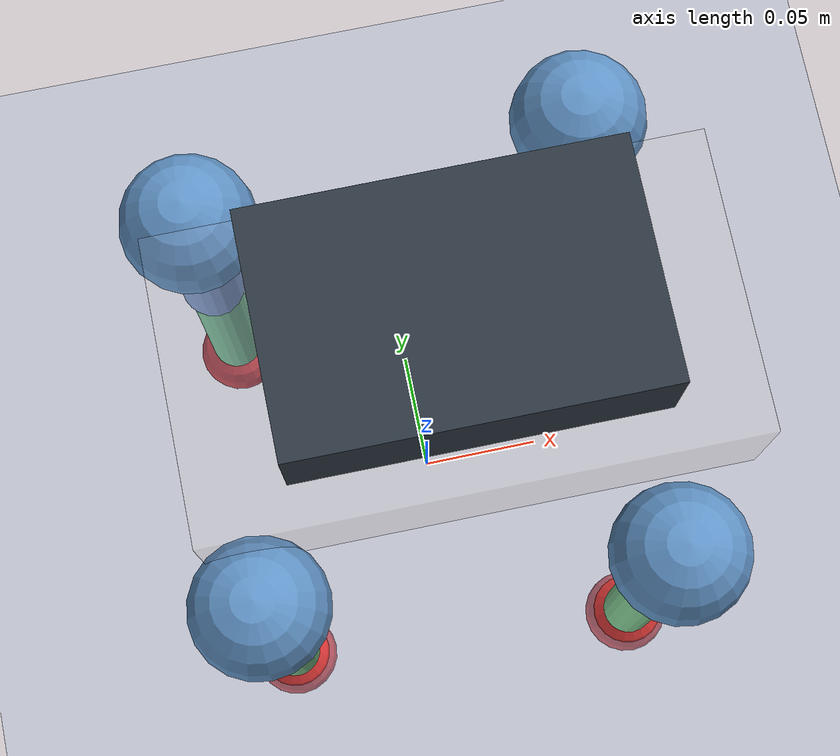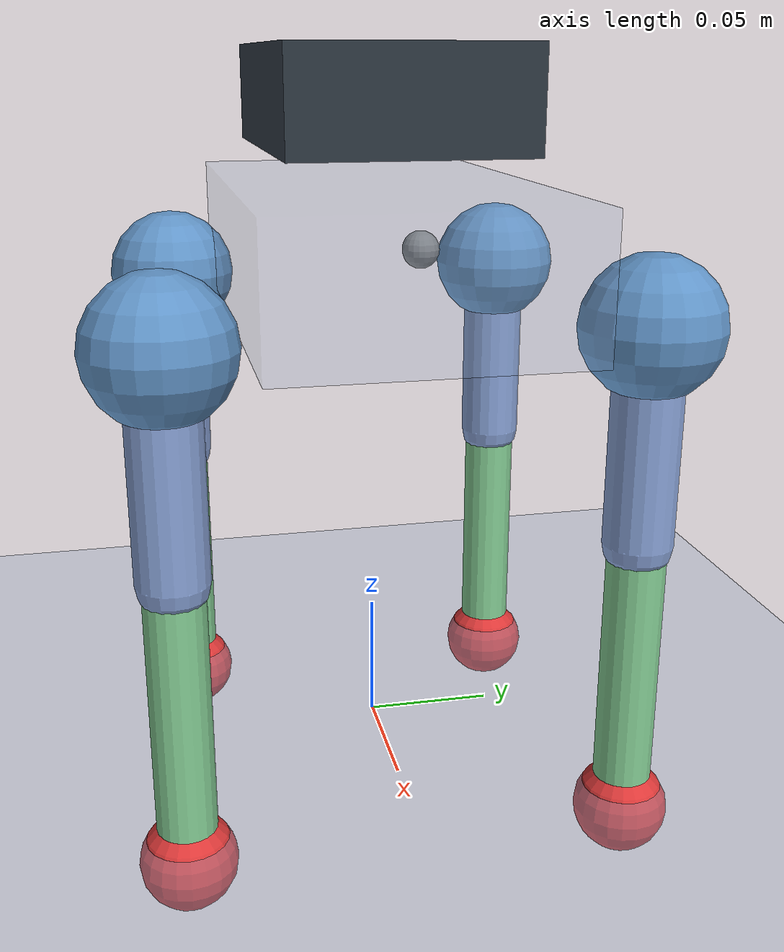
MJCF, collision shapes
<mujoco model="heavy">
  <compiler angle="radian" meshdir="../../shared/models/meshes/" autolimits="true"/>
  <default>
    <joint armature="0.003" damping="0.04" frictionloss="0.002" limited="true"/>
    <geom rgba="0.62 0.72 0.86 1" contype="0" conaffinity="0"/>
    <default class="variant_torso"><geom type="box" size="0.1 0.055 0.025" mass="3.012" rgba="0.55 0.66 0.82 0.20"/></default>
    <default class="variant_ballast"><geom type="box" size="0.065 0.042 0.018" mass="0" rgba="0.18 0.22 0.26 1" contype="0" conaffinity="0"/></default>
    <default class="variant_hip"><geom type="sphere" size="0.026" mass="0.045" rgba="0.38 0.58 0.78 1"/></default>
    <default class="variant_thigh"><geom type="capsule" fromto="0 0 0 0 0 -0.08" size="0.013" mass="0.186" rgba="0.52 0.62 0.82 1"/></default>
    <default class="variant_calf"><geom type="capsule" fromto="0 0 0 0 0 -0.11" size="0.011" mass="0.05" rgba="0.50 0.78 0.56 1"/></default>
    <default class="variant_foot"><geom type="sphere" pos="0 0 -0.11" size="0.018" mass="0.02" rgba="0.86 0.22 0.22 1" contype="1" conaffinity="1" condim="3" friction="1.2 0.04 0.01"/><site pos="0 0 -0.11" size="0.015" rgba="1 0.2 0.2 1"/></default>
  </default>
  <include file="../../shared/models/skeleton.xml"/>
</mujoco>

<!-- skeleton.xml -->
<mujoco model="shared_pupper_skeleton">
  <!-- Lab 4+: 完整 12-DoF Pupper skeleton。变体文件在 include 前注入 variant_* default。 -->
  <asset>
    <texture name="grid" type="2d" builtin="checker" width="512" height="512" rgb1=".2 .4 .6" rgb2=".4 .6 .8"/>
    <material name="grid" texture="grid" texrepeat="1 1" texuniform="true" reflectance="0"/>
    <mesh name="body" file="BodyV4v70_001.stl"/>
    <mesh name="hip_mesh" file="LegAssemblyForFlangedv26_010.stl" scale="1 -1 1"/>
    <mesh name="upper_leg_mesh" file="LegAssemblyForFlangedv26_011.stl" scale="1 1 -1"/>
    <mesh name="lower_leg_mesh" file="LegAssemblyForFlangedv26_012.stl" scale="1 1 -1"/>
  </asset>

  <option gravity="0 0 -9.81" timestep="0.004" cone="elliptic" impratio="50"/>

  <worldbody>
    <geom name="floor" type="plane" size="2 2 .05" material="grid" condim="3" contype="1" conaffinity="1"/>
    <light name="key" pos="0 0 3" dir="0 0 -1" diffuse="1 1 1"/>
    <camera name="iso" pos="0.70 -0.95 0.58" xyaxes="0.805 0.593 0 -0.233 0.316 0.920"/>

    <body name="base" pos="0 0 0.18">
      <freejoint name="root"/>
      <geom name="torso_mass" class="variant_torso" pos="0.01 0 0.02"/>
      <geom name="torso_ballast" class="variant_ballast" pos="0.01 0 0.075"/>
      <geom name="torso_mesh" type="mesh" mesh="body" quat="0.499998 -0.5 -0.500002 0.5" group="1" contype="0" conaffinity="0" density="0"/>
      <site name="body_imu_site" pos="0.08 0 0.03" size="0.006"/>

      <body name="FL_hip" pos="0.075 0.0835 0">
        <joint name="FL_HAA" type="hinge" axis="1 0 0" range="-0.8 0.8"/>
        <geom name="FL_hip_mass" class="variant_hip"/>
        <geom name="FL_hip_mesh" type="mesh" mesh="hip_mesh" group="1" contype="0" conaffinity="0" density="0"/>
        <body name="FL_thigh">
          <joint name="FL_HFE" type="hinge" axis="0 1 0" range="-1.8 1.2"/>
          <geom name="FL_thigh_capsule" class="variant_thigh"/>
          <geom name="FL_thigh_mesh" type="mesh" mesh="upper_leg_mesh" group="1" contype="0" conaffinity="0" density="0"/>
          <body name="FL_calf" pos="0 0 -0.08">
            <joint name="FL_KFE" type="hinge" axis="0 1 0" range="-2.6 0.1"/>
            <geom name="FL_calf_capsule" class="variant_calf"/>
            <geom name="FL_calf_mesh" type="mesh" mesh="lower_leg_mesh" group="1" contype="0" conaffinity="0" density="0"/>
            <geom name="FL_foot_geom" class="variant_foot"/>
            <site name="FL_foot" class="variant_foot"/>
          </body>
        </body>
      </body>

      <body name="FR_hip" pos="0.075 -0.0835 0">
        <joint name="FR_HAA" type="hinge" axis="1 0 0" range="-0.8 0.8"/>
        <geom name="FR_hip_mass" class="variant_hip"/>
        <geom name="FR_hip_mesh" type="mesh" mesh="hip_mesh" group="1" contype="0" conaffinity="0" density="0"/>
        <body name="FR_thigh">
          <joint name="FR_HFE" type="hinge" axis="0 1 0" range="-1.8 1.2"/>
          <geom name="FR_thigh_capsule" class="variant_thigh"/>
          <geom name="FR_thigh_mesh" type="mesh" mesh="upper_leg_mesh" group="1" contype="0" conaffinity="0" density="0"/>
          <body name="FR_calf" pos="0 0 -0.08">
            <joint name="FR_KFE" type="hinge" axis="0 1 0" range="-2.6 0.1"/>
            <geom name="FR_calf_capsule" class="variant_calf"/>
            <geom name="FR_calf_mesh" type="mesh" mesh="lower_leg_mesh" group="1" contype="0" conaffinity="0" density="0"/>
            <geom name="FR_foot_geom" class="variant_foot"/>
            <site name="FR_foot" class="variant_foot"/>
          </body>
        </body>
      </body>

      <body name="RL_hip" pos="-0.075 0.0725 0">
        <joint name="RL_HAA" type="hinge" axis="1 0 0" range="-0.8 0.8"/>
        <geom name="RL_hip_mass" class="variant_hip"/>
        <geom name="RL_hip_mesh" type="mesh" mesh="hip_mesh" group="1" contype="0" conaffinity="0" density="0"/>
        <body name="RL_thigh">
          <joint name="RL_HFE" type="hinge" axis="0 1 0" range="-1.8 1.2"/>
          <geom name="RL_thigh_capsule" class="variant_thigh"/>
          <geom name="RL_thigh_mesh" type="mesh" mesh="upper_leg_mesh" group="1" contype="0" conaffinity="0" density="0"/>
          <body name="RL_calf" pos="0 0 -0.08">
            <joint name="RL_KFE" type="hinge" axis="0 1 0" range="-2.6 0.1"/>
            <geom name="RL_calf_capsule" class="variant_calf"/>
            <geom name="RL_calf_mesh" type="mesh" mesh="lower_leg_mesh" group="1" contype="0" conaffinity="0" density="0"/>
            <geom name="RL_foot_geom" class="variant_foot"/>
            <site name="RL_foot" class="variant_foot"/>
          </body>
        </body>
      </body>

      <body name="RR_hip" pos="-0.075 -0.0725 0">
        <joint name="RR_HAA" type="hinge" axis="1 0 0" range="-0.8 0.8"/>
        <geom name="RR_hip_mass" class="variant_hip"/>
        <geom name="RR_hip_mesh" type="mesh" mesh="hip_mesh" group="1" contype="0" conaffinity="0" density="0"/>
        <body name="RR_thigh">
          <joint name="RR_HFE" type="hinge" axis="0 1 0" range="-1.8 1.2"/>
          <geom name="RR_thigh_capsule" class="variant_thigh"/>
          <geom name="RR_thigh_mesh" type="mesh" mesh="upper_leg_mesh" group="1" contype="0" conaffinity="0" density="0"/>
          <body name="RR_calf" pos="0 0 -0.08">
            <joint name="RR_KFE" type="hinge" axis="0 1 0" range="-2.6 0.1"/>
            <geom name="RR_calf_capsule" class="variant_calf"/>
            <geom name="RR_calf_mesh" type="mesh" mesh="lower_leg_mesh" group="1" contype="0" conaffinity="0" density="0"/>
            <geom name="RR_foot_geom" class="variant_foot"/>
            <site name="RR_foot" class="variant_foot"/>
          </body>
        </body>
      </body>
    </body>
  </worldbody>

  <actuator>
    <general name="FL_HAA_motor" joint="FL_HAA" forcerange="-18 18" forcelimited="true" gainprm="1 0 0" biasprm="0 0 0"/>
    <general name="FL_HFE_motor" joint="FL_HFE" forcerange="-18 18" forcelimited="true" gainprm="1 0 0" biasprm="0 0 0"/>
    <general name="FL_KFE_motor" joint="FL_KFE" forcerange="-18 18" forcelimited="true" gainprm="1 0 0" biasprm="0 0 0"/>
    <general name="FR_HAA_motor" joint="FR_HAA" forcerange="-18 18" forcelimited="true" gainprm="1 0 0" biasprm="0 0 0"/>
    <general name="FR_HFE_motor" joint="FR_HFE" forcerange="-18 18" forcelimited="true" gainprm="1 0 0" biasprm="0 0 0"/>
    <general name="FR_KFE_motor" joint="FR_KFE" forcerange="-18 18" forcelimited="true" gainprm="1 0 0" biasprm="0 0 0"/>
    <general name="RL_HAA_motor" joint="RL_HAA" forcerange="-18 18" forcelimited="true" gainprm="1 0 0" biasprm="0 0 0"/>
    <general name="RL_HFE_motor" joint="RL_HFE" forcerange="-18 18" forcelimited="true" gainprm="1 0 0" biasprm="0 0 0"/>
    <general name="RL_KFE_motor" joint="RL_KFE" forcerange="-18 18" forcelimited="true" gainprm="1 0 0" biasprm="0 0 0"/>
    <general name="RR_HAA_motor" joint="RR_HAA" forcerange="-18 18" forcelimited="true" gainprm="1 0 0" biasprm="0 0 0"/>
    <general name="RR_HFE_motor" joint="RR_HFE" forcerange="-18 18" forcelimited="true" gainprm="1 0 0" biasprm="0 0 0"/>
    <general name="RR_KFE_motor" joint="RR_KFE" forcerange="-18 18" forcelimited="true" gainprm="1 0 0" biasprm="0 0 0"/>
  </actuator>
</mujoco>
